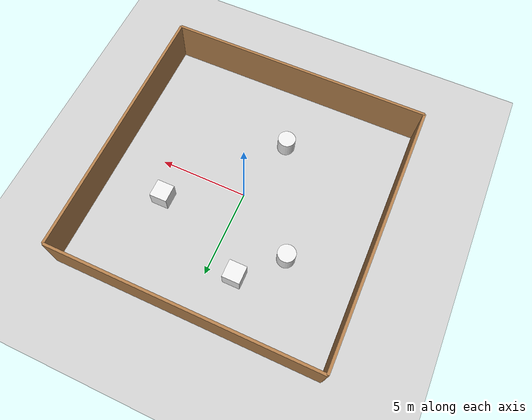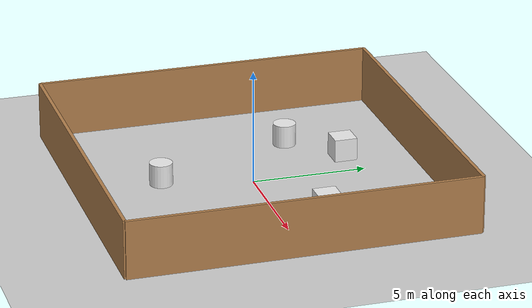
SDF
<sdf version="1.5">
 <world name="default">
  <include><uri>model://sun</uri></include>
  <include><uri>model://ground_plane</uri></include>
  <model name="unit_box_0">
   <pose>-1.5 4.5 0.5 0 -0 0</pose>
   <link name="link">
    <inertial>
     <mass>1</mass>
     <inertia>
      <ixx>0.166667</ixx>
      <ixy>0</ixy>
      <ixz>0</ixz>
      <iyy>0.166667</iyy>
      <iyz>0</iyz>
      <izz>0.166667</izz>
     </inertia>
    </inertial>
    <collision name="collision"><geometry><box><size>1 1 1</size></box></geometry></collision>
    <visual name="visual">
     <geometry><box><size>1 1 1</size></box></geometry>
     <material>
      <script><name>Gazebo/White</name><uri>file://media/materials/scripts/gazebo.material</uri></script>
     </material>
    </visual>
   </link>
  </model>
  <model name="unit_box_1">
   <pose>4 2 0.5 0 -0 0</pose>
   <link name="link">
    <inertial>
     <mass>1</mass>
     <inertia>
      <ixx>0.166667</ixx>
      <ixy>0</ixy>
      <ixz>0</ixz>
      <iyy>0.166667</iyy>
      <iyz>0</iyz>
      <izz>0.166667</izz>
     </inertia>
    </inertial>
    <collision name="collision"><geometry><box><size>1 1 1</size></box></geometry></collision>
    <visual name="visual">
     <geometry><box><size>1 1 1</size></box></geometry>
     <material>
      <script><name>Gazebo/White</name><uri>file://media/materials/scripts/gazebo.material</uri></script>
     </material>
    </visual>
   </link>
  </model>
  <model name="turtlebot3_square">
   <pose>0 0 1 0 -0 0</pose>
   <link name="Wall_0">
    <collision name="Wall_0_Collision"><geometry><box><size>15 0.15 3.0</size></box></geometry></collision>
    <visual name="Wall_0_Visual">
     <geometry><box><size>15 0.15 3.0</size></box></geometry>
     <material>
      <script><uri>file://media/materials/scripts/gazebo.material</uri><name>Gazebo/Wood</name></script>
      <ambient>1 1 1 1</ambient>
     </material>
    </visual>
    <pose>0 7.5 0 0 -0 0</pose>
   </link>
   <link name="Wall_2">
    <collision name="Wall_2_Collision"><geometry><box><size>15 0.15 3.0</size></box></geometry></collision>
    <visual name="Wall_2_Visual">
     <geometry><box><size>15 0.15 3.0</size></box></geometry>
     <material>
      <script><uri>file://media/materials/scripts/gazebo.material</uri><name>Gazebo/Wood</name></script>
      <ambient>1 1 1 1</ambient>
     </material>
    </visual>
    <pose>-7.5 0 0 0 0 -1.5708</pose>
   </link>
   <link name="Wall_3">
    <collision name="Wall_3_Collision"><geometry><box><size>15 0.15 3.0</size></box></geometry></collision>
    <visual name="Wall_3_Visual">
     <geometry><box><size>15 0.15 3.0</size></box></geometry>
     <material>
      <script><uri>file://media/materials/scripts/gazebo.material</uri><name>Gazebo/Wood</name></script>
      <ambient>1 1 1 1</ambient>
     </material>
    </visual>
    <pose>0 -7.5 0 0 -0 0</pose>
   </link>
   <link name="Wall_4">
    <collision name="Wall_4_Collision"><geometry><box><size>15 0.15 3.0</size></box></geometry></collision>
    <visual name="Wall_4_Visual">
     <geometry><box><size>15 0.15 3.0</size></box></geometry>
     <material>
      <script><uri>file://media/materials/scripts/gazebo.material</uri><name>Gazebo/Wood</name></script>
      <ambient>1 1 1 1</ambient>
     </material>
    </visual>
    <pose>7.5 0 0 0 -0 1.5708</pose>
   </link>
   <static>1</static>
  </model>
  <model name="unit_cylinder_0">
   <pose>-3.55976 2.5 0.5 0 -0 0</pose>
   <link name="link">
    <inertial>
     <mass>1</mass>
     <inertia><ixx>0.145833</ixx><ixy>0</ixy><ixz>0</ixz><iyy>0.145833</iyy><iyz>0</iyz><izz>0.125</izz></inertia>
    </inertial>
    <collision name="collision">
     <geometry><cylinder><radius>0.5</radius><length>1</length></cylinder></geometry>
    </collision>
    <visual name="visual">
     <geometry><cylinder><radius>0.5</radius><length>1</length></cylinder></geometry>
     <material>
      <script><name>Gazebo/White</name><uri>file://media/materials/scripts/gazebo.material</uri></script>
     </material>
    </visual>
   </link>
  </model>
  <model name="unit_cylinder_1">
   <pose>-0.956969 -3.79231 0.5 0 -0 0</pose>
   <link name="link">
    <inertial>
     <mass>1</mass>
     <inertia><ixx>0.145833</ixx><ixy>0</ixy><ixz>0</ixz><iyy>0.145833</iyy><iyz>0</iyz><izz>0.125</izz></inertia>
    </inertial>
    <collision name="collision">
     <geometry><cylinder><radius>0.5</radius><length>1</length></cylinder></geometry>
    </collision>
    <visual name="visual">
     <geometry><cylinder><radius>0.5</radius><length>1</length></cylinder></geometry>
     <material>
      <script><name>Gazebo/White</name><uri>file://media/materials/scripts/gazebo.material</uri></script>
     </material>
    </visual>
   </link>
  </model>
 </world>
</sdf>
